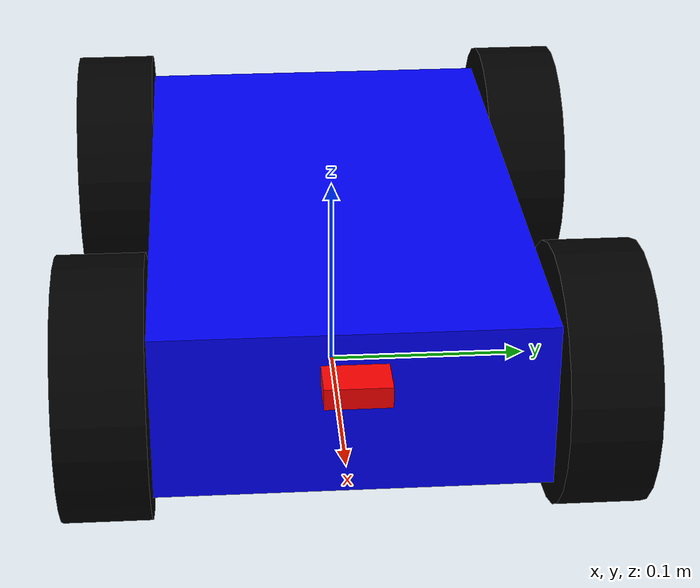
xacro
<?xml version="1.0"?>
<robot xmlns:xacro="http://www.ros.org/wiki/xacro" name="pipe_bot">

  <link name="base_footprint"/>

  <link name="base_link">
    <visual>
      <geometry>
        <box size="0.30 0.18 0.08"/>
      </geometry>
      <material name="blue">
        <color rgba="0 0 1 1"/>
      </material>
    </visual>
    <collision>
      <geometry>
        <box size="0.30 0.18 0.08"/>
      </geometry>
    </collision>
    <inertial>
      <mass value="8.0"/>
      <inertia ixx="0.02" ixy="0" ixz="0" iyy="0.03" iyz="0" izz="0.04"/>
    </inertial>
  </link>

  <joint name="base_joint" type="fixed">
    <parent link="base_footprint"/>
    <child link="base_link"/>
    <origin xyz="0 0 0.06" rpy="0 0 0"/>
  </joint>

  <gazebo reference="base_link">
    <material>Gazebo/Blue</material>
  </gazebo>

  <link name="wheel_fl">
    <visual>
      <origin xyz="0 0 0" rpy="1.5708 0 0"/>
      <geometry>
        <cylinder radius="0.06" length="0.04"/>
      </geometry>
      <material name="black"><color rgba="0 0 0 1"/></material>
    </visual>
    <collision>
      <origin xyz="0 0 0" rpy="1.5708 0 0"/>
      <geometry>
        <cylinder radius="0.06" length="0.04"/>
      </geometry>
    </collision>
    <inertial>
      <mass value="0.8"/>
      <inertia ixx="0.001" ixy="0" ixz="0" iyy="0.001" iyz="0" izz="0.001"/>
    </inertial>
  </link>

  <gazebo reference="wheel_fl">
    <mu1>1000.0</mu1>
    <mu2>1000.0</mu2>
    <material>Gazebo/Black</material>
  </gazebo>

  <joint name="wheel_fl_joint" type="continuous">
    <parent link="base_link"/>
    <child link="wheel_fl"/>
    <origin xyz="0.12 0.11 0" rpy="0 0 0"/>
    <axis xyz="0 1 0"/>
  </joint>

  <link name="wheel_fr">
    <visual>
      <origin xyz="0 0 0" rpy="1.5708 0 0"/>
      <geometry>
        <cylinder radius="0.06" length="0.04"/>
      </geometry>
      <material name="black"><color rgba="0 0 0 1"/></material>
    </visual>
    <collision>
      <origin xyz="0 0 0" rpy="1.5708 0 0"/>
      <geometry>
        <cylinder radius="0.06" length="0.04"/>
      </geometry>
    </collision>
    <inertial>
      <mass value="0.8"/>
      <inertia ixx="0.001" ixy="0" ixz="0" iyy="0.001" iyz="0" izz="0.001"/>
    </inertial>
  </link>

  <gazebo reference="wheel_fr">
    <mu1>1000.0</mu1>
    <mu2>1000.0</mu2>
    <material>Gazebo/Black</material>
  </gazebo>

  <joint name="wheel_fr_joint" type="continuous">
    <parent link="base_link"/>
    <child link="wheel_fr"/>
    <origin xyz="0.12 -0.11 0" rpy="0 0 0"/>
    <axis xyz="0 1 0"/>
  </joint>

  <link name="wheel_rl">
    <visual>
      <origin xyz="0 0 0" rpy="1.5708 0 0"/>
      <geometry>
        <cylinder radius="0.06" length="0.04"/>
      </geometry>
      <material name="black"><color rgba="0 0 0 1"/></material>
    </visual>
    <collision>
      <origin xyz="0 0 0" rpy="1.5708 0 0"/>
      <geometry>
        <cylinder radius="0.06" length="0.04"/>
      </geometry>
    </collision>
    <inertial>
      <mass value="0.8"/>
      <inertia ixx="0.001" ixy="0" ixz="0" iyy="0.001" iyz="0" izz="0.001"/>
    </inertial>
  </link>

  <gazebo reference="wheel_rl">
    <mu1>1000.0</mu1>
    <mu2>1000.0</mu2>
    <material>Gazebo/Black</material>
  </gazebo>

  <joint name="wheel_rl_joint" type="continuous">
    <parent link="base_link"/>
    <child link="wheel_rl"/>
    <origin xyz="-0.12 0.11 0" rpy="0 0 0"/>
    <axis xyz="0 1 0"/>
  </joint>

  <link name="wheel_rr">
    <visual>
      <origin xyz="0 0 0" rpy="1.5708 0 0"/>
      <geometry>
        <cylinder radius="0.06" length="0.04"/>
      </geometry>
      <material name="black"><color rgba="0 0 0 1"/></material>
    </visual>
    <collision>
      <origin xyz="0 0 0" rpy="1.5708 0 0"/>
      <geometry>
        <cylinder radius="0.06" length="0.04"/>
      </geometry>
    </collision>
    <inertial>
      <mass value="0.8"/>
      <inertia ixx="0.001" ixy="0" ixz="0" iyy="0.001" iyz="0" izz="0.001"/>
    </inertial>
  </link>

  <gazebo reference="wheel_rr">
    <mu1>1000.0</mu1>
    <mu2>1000.0</mu2>
    <material>Gazebo/Black</material>
  </gazebo>

  <joint name="wheel_rr_joint" type="continuous">
    <parent link="base_link"/>
    <child link="wheel_rr"/>
    <origin xyz="-0.12 -0.11 0" rpy="0 0 0"/>
    <axis xyz="0 1 0"/>
  </joint>

  <link name="ultrasonic_front">
    <visual>
      <geometry>
        <box size="0.02 0.03 0.01"/>
      </geometry>
      <material name="red"><color rgba="1 0 0 1"/></material>
    </visual>
    <inertial>
      <mass value="0.01"/>
      <inertia ixx="0.000001" ixy="0" ixz="0" iyy="0.000001" iyz="0" izz="0.000001"/>
    </inertial>
  </link>

  <joint name="ultrasonic_front_joint" type="fixed">
    <parent link="base_link"/>
    <child link="ultrasonic_front"/>
    <origin xyz="0.16 0 0.02" rpy="0 0 0"/>
  </joint>

  <gazebo reference="ultrasonic_front">
    <material>Gazebo/Red</material>
    <sensor type="ray" name="ultrasonic_front_sensor">
      <visualize>true</visualize>
      <update_rate>10</update_rate>
      <ray>
        <scan>
          <horizontal>
            <samples>3</samples>
            <min_angle>-0.1</min_angle>
            <max_angle>0.1</max_angle>
          </horizontal>
        </scan>
        <range>
          <min>0.05</min>
          <max>4.0</max>
        </range>
      </ray>
      <plugin name="ultrasonic_front_plugin" filename="libgazebo_ros_ray_sensor.so">
        <ros>
          <namespace>/pipe_bot</namespace>
          <remapping>~/out:=ultrasonic_front</remapping>
        </ros>
        <output_type>sensor_msgs/Range</output_type>
        <radiation_type>ultrasound</radiation_type>
        <frame_name>ultrasonic_front</frame_name>
      </plugin>
    </sensor>
  </gazebo>

  <link name="ultrasonic_left">
    <visual>
      <geometry>
        <box size="0.03 0.02 0.01"/>
      </geometry>
      <material name="red"><color rgba="1 0 0 1"/></material>
    </visual>
    <inertial>
      <mass value="0.01"/>
      <inertia ixx="0.000001" ixy="0" ixz="0" iyy="0.000001" iyz="0" izz="0.000001"/>
    </inertial>
  </link>

  <joint name="ultrasonic_left_joint" type="fixed">
    <parent link="base_link"/>
    <child link="ultrasonic_left"/>
    <origin xyz="0.08 0.10 0.02" rpy="0 0 1.5708"/>
  </joint>

  <gazebo reference="ultrasonic_left">
    <material>Gazebo/Red</material>
    <sensor type="ray" name="ultrasonic_left_sensor">
      <visualize>true</visualize>
      <update_rate>10</update_rate>
      <ray>
        <scan>
          <horizontal>
            <samples>3</samples>
            <min_angle>-0.1</min_angle>
            <max_angle>0.1</max_angle>
          </horizontal>
        </scan>
        <range>
          <min>0.05</min>
          <max>4.0</max>
        </range>
      </ray>
      <plugin name="ultrasonic_left_plugin" filename="libgazebo_ros_ray_sensor.so">
        <ros>
          <namespace>/pipe_bot</namespace>
          <remapping>~/out:=ultrasonic_left</remapping>
        </ros>
        <output_type>sensor_msgs/Range</output_type>
        <radiation_type>ultrasound</radiation_type>
        <frame_name>ultrasonic_left</frame_name>
      </plugin>
    </sensor>
  </gazebo>

  <link name="ultrasonic_right">
    <visual>
      <geometry>
        <box size="0.03 0.02 0.01"/>
      </geometry>
      <material name="red"><color rgba="1 0 0 1"/></material>
    </visual>
    <inertial>
      <mass value="0.01"/>
      <inertia ixx="0.000001" ixy="0" ixz="0" iyy="0.000001" iyz="0" izz="0.000001"/>
    </inertial>
  </link>

  <joint name="ultrasonic_right_joint" type="fixed">
    <parent link="base_link"/>
    <child link="ultrasonic_right"/>
    <origin xyz="0.08 -0.10 0.02" rpy="0 0 -1.5708"/>
  </joint>

  <gazebo reference="ultrasonic_right">
    <material>Gazebo/Red</material>
    <sensor type="ray" name="ultrasonic_right_sensor">
      <visualize>true</visualize>
      <update_rate>10</update_rate>
      <ray>
        <scan>
          <horizontal>
            <samples>3</samples>
            <min_angle>-0.1</min_angle>
            <max_angle>0.1</max_angle>
          </horizontal>
        </scan>
        <range>
          <min>0.05</min>
          <max>4.0</max>
        </range>
      </ray>
      <plugin name="ultrasonic_right_plugin" filename="libgazebo_ros_ray_sensor.so">
        <ros>
          <namespace>/pipe_bot</namespace>
          <remapping>~/out:=ultrasonic_right</remapping>
        </ros>
        <output_type>sensor_msgs/Range</output_type>
        <radiation_type>ultrasound</radiation_type>
        <frame_name>ultrasonic_right</frame_name>
      </plugin>
    </sensor>
  </gazebo>

  <gazebo>
    <plugin name="diff_drive" filename="libgazebo_ros_diff_drive.so">
      <update_rate>50</update_rate>
      <left_joint>wheel_fl_joint</left_joint>
      <right_joint>wheel_fr_joint</right_joint>
      <wheel_separation>0.22</wheel_separation>
      <wheel_diameter>0.12</wheel_diameter>
      <max_wheel_torque>200</max_wheel_torque>
      <max_wheel_acceleration>10.0</max_wheel_acceleration>
      <command_topic>cmd_vel</command_topic>
      <publish_odom>true</publish_odom>
      <publish_odom_tf>true</publish_odom_tf>
      <odometry_topic>odom</odometry_topic>
      <odometry_frame>odom</odometry_frame>
      <robot_base_frame>base_footprint</robot_base_frame>
    </plugin>
  </gazebo>

</robot>
